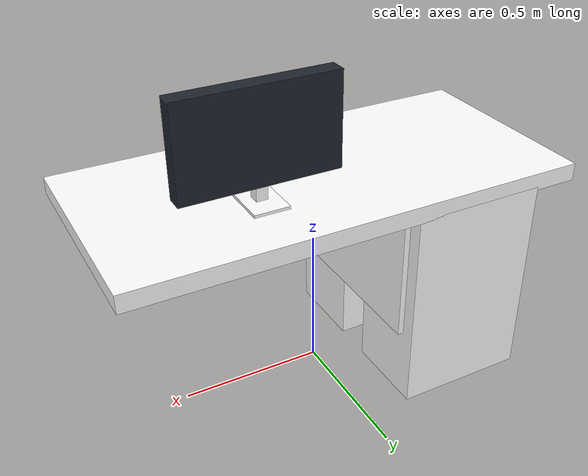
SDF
<?xml version="1.0"?>
<sdf version="1.9">
  <model name="desk">
    <static>true</static>
    <link name="body">

      <collision name="top_collision">
        <pose>0 0 0.73 0 0 0</pose>
        <geometry><box><size>1.56 0.74 0.06</size></box></geometry>
      </collision>
      <visual name="top_visual">
        <pose>0 0 0.73 0 0 0</pose>
        <geometry><box><size>1.56 0.74 0.06</size></box></geometry>
        <material>
          <ambient>1 1 1 1</ambient>
          <diffuse>1 1 1 1</diffuse>
          <specular>0.05 0.05 0.05 1</specular>
          <pbr>
            <metal>
              <albedo_map>materials/textures/wood_albedo.jpg</albedo_map>
              <normal_map>materials/textures/wood_normal.jpg</normal_map>
              <roughness_map>materials/textures/wood_roughness.jpg</roughness_map>
              <metalness>0.0</metalness>
            </metal>
          </pbr>
        </material>
      </visual>

      <collision name="left_pedestal_collision">
        <pose>-0.40 0.22 0.35 0 0 0</pose>
        <geometry><box><size>0.46 0.30 0.72</size></box></geometry>
      </collision>
      <collision name="right_pedestal_collision">
        <pose>-0.40 -0.22 0.35 0 0 0</pose>
        <geometry><box><size>0.46 0.30 0.72</size></box></geometry>
      </collision>
      <visual name="left_pedestal_visual">
        <pose>-0.40 0.22 0.35 0 0 0</pose>
        <geometry><box><size>0.46 0.30 0.72</size></box></geometry>
        <material>
          <ambient>1 1 1 1</ambient>
          <diffuse>1 1 1 1</diffuse>
          <specular>0.05 0.05 0.05 1</specular>
          <pbr>
            <metal>
              <albedo_map>materials/textures/wood_albedo.jpg</albedo_map>
              <normal_map>materials/textures/wood_normal.jpg</normal_map>
              <roughness_map>materials/textures/wood_roughness.jpg</roughness_map>
              <metalness>0.0</metalness>
            </metal>
          </pbr>
        </material>
      </visual>
      <visual name="right_pedestal_visual">
        <pose>-0.40 -0.22 0.35 0 0 0</pose>
        <geometry><box><size>0.46 0.30 0.72</size></box></geometry>
        <material>
          <ambient>1 1 1 1</ambient>
          <diffuse>1 1 1 1</diffuse>
          <specular>0.05 0.05 0.05 1</specular>
          <pbr>
            <metal>
              <albedo_map>materials/textures/wood_albedo.jpg</albedo_map>
              <normal_map>materials/textures/wood_normal.jpg</normal_map>
              <roughness_map>materials/textures/wood_roughness.jpg</roughness_map>
              <metalness>0.0</metalness>
            </metal>
          </pbr>
        </material>
      </visual>

      <collision name="modesty_panel_collision">
        <pose>-0.18 0 0.47 0 0 0</pose>
        <geometry><box><size>0.06 0.64 0.44</size></box></geometry>
      </collision>
      <collision name="monitor_base_collision">
        <pose>0.24 0.10 0.765 0 0 0</pose>
        <geometry><box><size>0.12 0.18 0.01</size></box></geometry>
      </collision>
      <collision name="monitor_stem_collision">
        <pose>0.24 0.10 0.85 0 0 0</pose>
        <geometry><box><size>0.04 0.04 0.16</size></box></geometry>
      </collision>
      <collision name="monitor_screen_collision">
        <pose>0.24 0.10 0.98 0 0 0</pose>
        <geometry><box><size>0.54 0.06 0.32</size></box></geometry>
      </collision>
      <collision name="keyboard_collision">
        <pose>0.24 -0.12 0.755 0 0 0</pose>
        <geometry><box><size>0.34 0.12 0.02</size></box></geometry>
      </collision>
      <visual name="modesty_panel_visual">
        <pose>-0.18 0 0.47 0 0 0</pose>
        <geometry><box><size>0.06 0.64 0.44</size></box></geometry>
        <material>
          <ambient>1 1 1 1</ambient>
          <diffuse>1 1 1 1</diffuse>
          <specular>0.05 0.05 0.05 1</specular>
          <pbr>
            <metal>
              <albedo_map>materials/textures/wood_albedo.jpg</albedo_map>
              <normal_map>materials/textures/wood_normal.jpg</normal_map>
              <roughness_map>materials/textures/wood_roughness.jpg</roughness_map>
              <metalness>0.0</metalness>
            </metal>
          </pbr>
        </material>
      </visual>

      <visual name="drawer_front_top_left">
        <pose>-0.20 0.20 0.54 0 0 0</pose>
        <geometry><box><size>0.03 0.22 0.14</size></box></geometry>
        <material><ambient>1 1 1 1</ambient><diffuse>1 1 1 1</diffuse><specular>0.05 0.05 0.05 1</specular><pbr><metal><albedo_map>materials/textures/wood_albedo.jpg</albedo_map><normal_map>materials/textures/wood_normal.jpg</normal_map><roughness_map>materials/textures/wood_roughness.jpg</roughness_map><metalness>0.0</metalness></metal></pbr></material>
      </visual>
      <visual name="drawer_front_mid_left">
        <pose>-0.20 0.20 0.35 0 0 0</pose>
        <geometry><box><size>0.03 0.22 0.16</size></box></geometry>
        <material><ambient>1 1 1 1</ambient><diffuse>1 1 1 1</diffuse><specular>0.05 0.05 0.05 1</specular><pbr><metal><albedo_map>materials/textures/wood_albedo.jpg</albedo_map><normal_map>materials/textures/wood_normal.jpg</normal_map><roughness_map>materials/textures/wood_roughness.jpg</roughness_map><metalness>0.0</metalness></metal></pbr></material>
      </visual>
      <visual name="drawer_front_bottom_left">
        <pose>-0.20 0.20 0.16 0 0 0</pose>
        <geometry><box><size>0.03 0.22 0.16</size></box></geometry>
        <material><ambient>1 1 1 1</ambient><diffuse>1 1 1 1</diffuse><specular>0.05 0.05 0.05 1</specular><pbr><metal><albedo_map>materials/textures/wood_albedo.jpg</albedo_map><normal_map>materials/textures/wood_normal.jpg</normal_map><roughness_map>materials/textures/wood_roughness.jpg</roughness_map><metalness>0.0</metalness></metal></pbr></material>
      </visual>
      <visual name="drawer_front_top_right">
        <pose>-0.20 -0.20 0.54 0 0 0</pose>
        <geometry><box><size>0.03 0.22 0.14</size></box></geometry>
        <material><ambient>1 1 1 1</ambient><diffuse>1 1 1 1</diffuse><specular>0.05 0.05 0.05 1</specular><pbr><metal><albedo_map>materials/textures/wood_albedo.jpg</albedo_map><normal_map>materials/textures/wood_normal.jpg</normal_map><roughness_map>materials/textures/wood_roughness.jpg</roughness_map><metalness>0.0</metalness></metal></pbr></material>
      </visual>
      <visual name="drawer_front_mid_right">
        <pose>-0.20 -0.20 0.35 0 0 0</pose>
        <geometry><box><size>0.03 0.22 0.16</size></box></geometry>
        <material><ambient>1 1 1 1</ambient><diffuse>1 1 1 1</diffuse><specular>0.05 0.05 0.05 1</specular><pbr><metal><albedo_map>materials/textures/wood_albedo.jpg</albedo_map><normal_map>materials/textures/wood_normal.jpg</normal_map><roughness_map>materials/textures/wood_roughness.jpg</roughness_map><metalness>0.0</metalness></metal></pbr></material>
      </visual>
      <visual name="drawer_front_bottom_right">
        <pose>-0.20 -0.20 0.16 0 0 0</pose>
        <geometry><box><size>0.03 0.22 0.16</size></box></geometry>
        <material><ambient>1 1 1 1</ambient><diffuse>1 1 1 1</diffuse><specular>0.05 0.05 0.05 1</specular><pbr><metal><albedo_map>materials/textures/wood_albedo.jpg</albedo_map><normal_map>materials/textures/wood_normal.jpg</normal_map><roughness_map>materials/textures/wood_roughness.jpg</roughness_map><metalness>0.0</metalness></metal></pbr></material>
      </visual>

      <visual name="monitor_base">
        <pose>0.24 0.10 0.765 0 0 0</pose>
        <geometry><box><size>0.12 0.18 0.01</size></box></geometry>
        <material><ambient>1 1 1 1</ambient><diffuse>1 1 1 1</diffuse><specular>0.12 0.12 0.12 1</specular><pbr><metal><albedo_map>materials/textures/metal_albedo.jpg</albedo_map><normal_map>materials/textures/metal_normal.jpg</normal_map><roughness_map>materials/textures/metal_roughness.jpg</roughness_map><metalness_map>materials/textures/metal_metalness.jpg</metalness_map></metal></pbr></material>
      </visual>
      <visual name="monitor_stem">
        <pose>0.24 0.10 0.85 0 0 0</pose>
        <geometry><box><size>0.04 0.04 0.16</size></box></geometry>
        <material><ambient>1 1 1 1</ambient><diffuse>1 1 1 1</diffuse><specular>0.12 0.12 0.12 1</specular><pbr><metal><albedo_map>materials/textures/metal_albedo.jpg</albedo_map><normal_map>materials/textures/metal_normal.jpg</normal_map><roughness_map>materials/textures/metal_roughness.jpg</roughness_map><metalness_map>materials/textures/metal_metalness.jpg</metalness_map></metal></pbr></material>
      </visual>
      <visual name="monitor_screen">
        <pose>0.24 0.10 0.98 0 0 0</pose>
        <geometry><box><size>0.54 0.06 0.32</size></box></geometry>
        <material><ambient>0.07 0.08 0.10 1</ambient><diffuse>0.12 0.14 0.18 1</diffuse></material>
      </visual>

      <visual name="keyboard_visual">
        <pose>0.24 -0.12 0.755 0 0 0</pose>
        <geometry><box><size>0.34 0.12 0.02</size></box></geometry>
        <material><ambient>1 1 1 1</ambient><diffuse>1 1 1 1</diffuse><specular>0.12 0.12 0.12 1</specular><pbr><metal><albedo_map>materials/textures/metal_albedo.jpg</albedo_map><normal_map>materials/textures/metal_normal.jpg</normal_map><roughness_map>materials/textures/metal_roughness.jpg</roughness_map><metalness_map>materials/textures/metal_metalness.jpg</metalness_map></metal></pbr></material>
      </visual>

    </link>
  </model>
</sdf>
